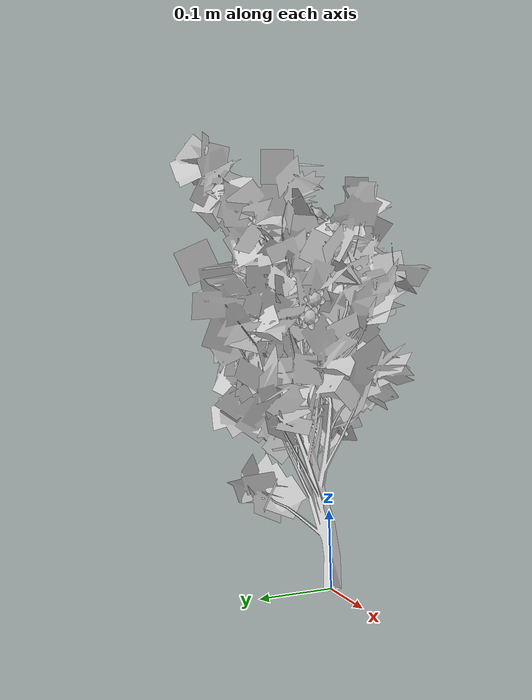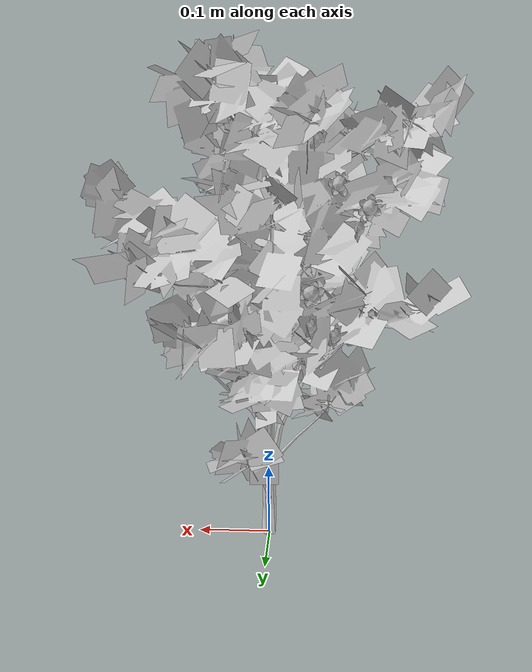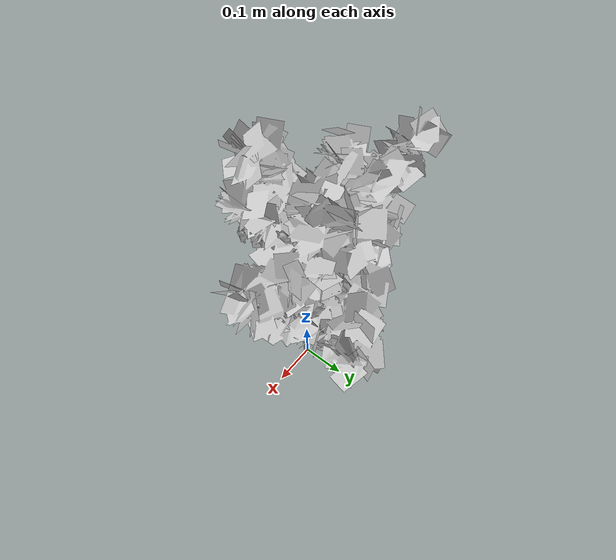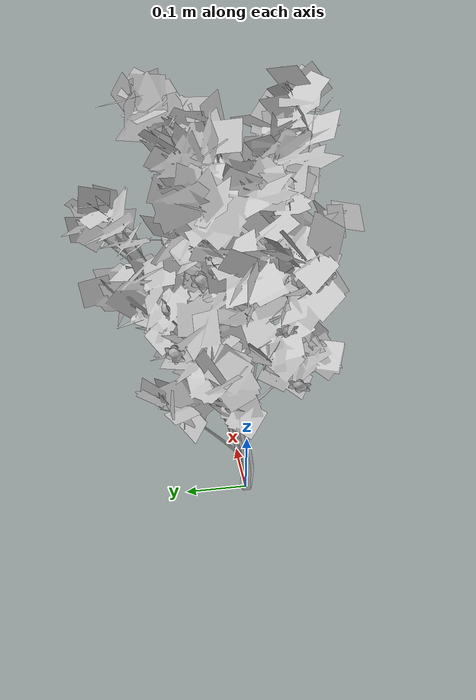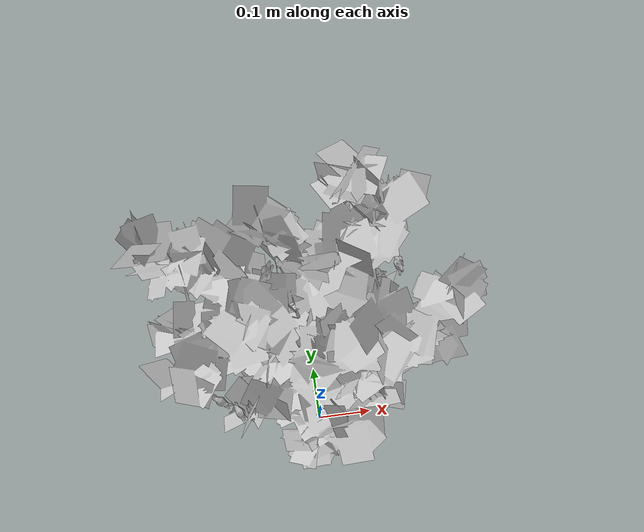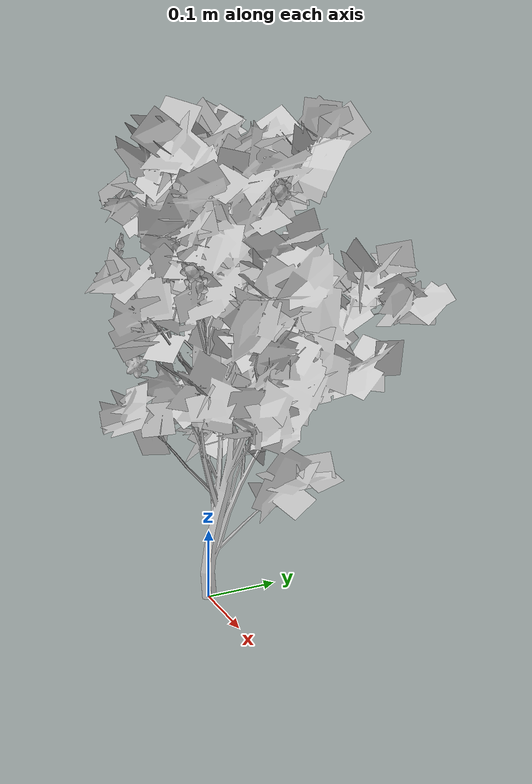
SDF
<?xml version="1.0" ?>
<sdf version="1.6">
  <model name="tree-flowers">
    <!--Skew-Seed:1963197035-->
    <static>true</static>
    <link name="link"/>
    <include>
      <uri>model://tree-mesh</uri>
      <pose>0 0 0 0 0 0</pose>
    </include>
    <joint name="tree_joint" type="fixed">
      <child>tree-mesh::link</child>
      <parent>link</parent>
    </joint>
    <include>
      <name>bramble_0</name>
      <uri>model://bramble</uri>
      <pose> 0.06174842399132445 -0.03955885405054295 0.4710653336929591 0.7150855419918406 1.458630421902501 0.0</pose>
    </include>
    <joint name="flower_joint_0" type="fixed">
      <child>bramble_0::flower_link</child>
      <parent>link</parent>
    </joint>
    <include>
      <name>bramble_1</name>
      <uri>model://bramble</uri>
      <pose> -0.09918900978291709 -0.034012983521369944 0.3669900261395716 -3.169871150083565 1.11026722219749 0.0</pose>
    </include>
    <joint name="flower_joint_1" type="fixed">
      <child>bramble_1::flower_link</child>
      <parent>link</parent>
    </joint>
    <include>
      <name>bramble_2</name>
      <uri>model://bramble</uri>
      <pose> -0.10708349888716195 -0.07226435488336656 0.4357252838066466 -3.1342242699197627 1.2847973407617954 0.0</pose>
    </include>
    <joint name="flower_joint_2" type="fixed">
      <child>bramble_2::flower_link</child>
      <parent>link</parent>
    </joint>
    <include>
      <name>bramble_3</name>
      <uri>model://bramble</uri>
      <pose> -0.05820618506835293 0.12595762812354766 0.3883743433908665 -1.8566583421303293 1.2026329924076968 0.0</pose>
    </include>
    <joint name="flower_joint_3" type="fixed">
      <child>bramble_3::flower_link</child>
      <parent>link</parent>
    </joint>
    <include>
      <name>bramble_4</name>
      <uri>model://bramble</uri>
      <pose> 0.054769436722122755 0.10139413280934086 0.30374924458439295 -1.6233611516423272 2.111818122065249 0.0</pose>
    </include>
    <joint name="flower_joint_4" type="fixed">
      <child>bramble_4::flower_link</child>
      <parent>link</parent>
    </joint>
    <include>
      <name>bramble_5</name>
      <uri>model://bramble</uri>
      <pose> -0.12124275379261282 -0.0784246601440124 0.46307469642445315 -3.6369403880682283 1.8985382135809572 0.0</pose>
    </include>
    <joint name="flower_joint_5" type="fixed">
      <child>bramble_5::flower_link</child>
      <parent>link</parent>
    </joint>
    <include>
      <name>bramble_6</name>
      <uri>model://bramble</uri>
      <pose> 0.0961751100102139 0.11157116712006952 0.4205460274839384 -1.3980395059714303 1.558830346332074 0.0</pose>
    </include>
    <joint name="flower_joint_6" type="fixed">
      <child>bramble_6::flower_link</child>
      <parent>link</parent>
    </joint>
    <include>
      <name>bramble_7</name>
      <uri>model://bramble</uri>
      <pose> -0.06238038432250888 0.0704226811945475 0.5696731458139401 -2.587943743569214 1.3123695485088367 0.0</pose>
    </include>
    <joint name="flower_joint_7" type="fixed">
      <child>bramble_7::flower_link</child>
      <parent>link</parent>
    </joint>
    <include>
      <name>bramble_8</name>
      <uri>model://bramble</uri>
      <pose> -0.14552813154657432 -0.06150759408108353 0.47701267523904883 -4.135797478616028 1.944363568640745 0.0</pose>
    </include>
    <joint name="flower_joint_8" type="fixed">
      <child>bramble_8::flower_link</child>
      <parent>link</parent>
    </joint>
    <include>
      <name>bramble_9</name>
      <uri>model://bramble</uri>
      <pose> -0.055725782446376965 0.10863219263710855 0.3404715855321498 -2.735921343434425 1.5796173720066808 0.0</pose>
    </include>
    <joint name="flower_joint_9" type="fixed">
      <child>bramble_9::flower_link</child>
      <parent>link</parent>
    </joint>
    <include>
      <name>bramble_10</name>
      <uri>model://bramble</uri>
      <pose> -0.12974793774507604 0.07206708685591798 0.4862479017241551 -1.9244962853703214 1.442733393830707 0.0</pose>
    </include>
    <joint name="flower_joint_10" type="fixed">
      <child>bramble_10::flower_link</child>
      <parent>link</parent>
    </joint>
    <include>
      <name>bramble_11</name>
      <uri>model://bramble</uri>
      <pose> -0.09095245361521812 0.06251250736331158 0.5134648476287005 -2.1038108654069285 1.9565318122779451 0.0</pose>
    </include>
    <joint name="flower_joint_11" type="fixed">
      <child>bramble_11::flower_link</child>
      <parent>link</parent>
    </joint>
    <include>
      <name>bramble_12</name>
      <uri>model://bramble</uri>
      <pose> -0.11399486421196144 0.08450005297038782 0.46088873212368 -2.8642464034876407 1.4322915116498933 0.0</pose>
    </include>
    <joint name="flower_joint_12" type="fixed">
      <child>bramble_12::flower_link</child>
      <parent>link</parent>
    </joint>
    <include>
      <name>bramble_13</name>
      <uri>model://bramble</uri>
      <pose> 0.09786036275606494 0.05548794442640394 0.588350531784757 -0.15101406846733956 1.6291534411613466 0.0</pose>
    </include>
    <joint name="flower_joint_13" type="fixed">
      <child>bramble_13::flower_link</child>
      <parent>link</parent>
    </joint>
    <include>
      <name>bramble_14</name>
      <uri>model://bramble</uri>
      <pose> 0.07404219918797435 -0.04588242754354041 0.3373923039302688 0.2787360884633564 2.0524856414835093 0.0</pose>
    </include>
    <joint name="flower_joint_14" type="fixed">
      <child>bramble_14::flower_link</child>
      <parent>link</parent>
    </joint>
    <include>
      <name>bramble_15</name>
      <uri>model://bramble</uri>
      <pose> 0.08946232205163204 -0.056105382889500496 0.4992609868177988 0.7423696653386025 2.116116625089594 0.0</pose>
    </include>
    <joint name="flower_joint_15" type="fixed">
      <child>bramble_15::flower_link</child>
      <parent>link</parent>
    </joint>
    <include>
      <name>bramble_16</name>
      <uri>model://bramble</uri>
      <pose> -0.08566399511897053 0.11961330382040382 0.3322455155919464 -2.6657998160001335 1.478283880000643 0.0</pose>
    </include>
    <joint name="flower_joint_16" type="fixed">
      <child>bramble_16::flower_link</child>
      <parent>link</parent>
    </joint>
    <include>
      <name>bramble_17</name>
      <uri>model://bramble</uri>
      <pose> -0.14133217148428753 -0.0468311729196028 0.3019144165717523 -2.8441674624316677 1.1833935096664459 0.0</pose>
    </include>
    <joint name="flower_joint_17" type="fixed">
      <child>bramble_17::flower_link</child>
      <parent>link</parent>
    </joint>
  </model>
</sdf>

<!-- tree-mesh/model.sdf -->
<sdf version="1.6">
  <model name="tree-mesh">
    <static>true</static>
    <link name="link">

      <collision name="collision">
        <geometry>
          <mesh>
            <uri>model://tree-mesh/meshes/new_tree.dae</uri>
            <scale>0.0625 0.0625 0.0625</scale>
          </mesh>
        </geometry>
      </collision>

      <!-- simplified collision for sake of speed since leaves shouldn't be blocking anyway -->

      <visual name="leaves">
        <geometry>
          <mesh>
            <uri>model://tree-mesh/meshes/leaves.dae</uri>
            <scale>0.0325 0.0325 0.0325</scale>
          </mesh>
        </geometry>
        <material>
          <script>
            <uri>model://tree-mesh/materials/scripts/</uri>
            <uri>model://tree-mesh/materials/textures/</uri>
            <name>NewTree/Branch</name>
          </script>
        </material>
      </visual>
      <visual name="bark">
        <geometry>
          <mesh>
            <uri>model://tree-mesh/meshes/bark.dae</uri>
            <scale>0.0325 0.0325 0.0325</scale>
          </mesh>
        </geometry>
        <material>
          <script>
            <uri>model://tree-mesh/materials/scripts/</uri>
            <uri>model://tree-mesh/materials/textures/</uri>
            <name>NewTree/Bark</name>
          </script>
        </material>
      </visual>
    </link>
  </model>
</sdf>

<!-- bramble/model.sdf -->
<sdf version="1.6">
  <model name="bramble">
    <static>true</static>
    <link name="flower_link">
      <collision name="body_collision">
        <geometry>
          <mesh>
            <uri>model://bramble/meshes/bramble.dae</uri>
            <scale>0.2 0.2 0.2</scale>
          </mesh>
        </geometry>
      </collision>
      <visual name="petals">
        <geometry>
          <mesh>
            <uri>model://bramble/meshes/bramble.dae</uri>
            <scale>0.2 0.2 0.2</scale>
            <submesh>
              <name>petal</name>
            </submesh>
          </mesh>
        </geometry>
        <material>
          <script>
            <uri>model://bramble/materials/scripts/</uri>
            <uri>model://bramble/materials/textures/</uri>
            <name>Bramble/Petal</name>
          </script>
        </material>
      </visual>
      <visual name="carpel">
        <geometry>
          <mesh>
            <uri>model://bramble/meshes/bramble.dae</uri>
            <scale>0.2 0.2 0.2</scale>
            <submesh>
              <name>carpel</name>
            </submesh>
          </mesh>
        </geometry>
        <material>
          <script>
            <uri>model://bramble/materials/scripts/</uri>
            <uri>model://bramble/materials/textures/</uri>
            <name>Bramble/Carpel</name>
          </script>
        </material>
      </visual>
      <visual name="stamen">
        <geometry>
          <mesh>
            <uri>model://bramble/meshes/bramble.dae</uri>
            <scale>0.2 0.2 0.2</scale>
            <submesh>
              <name>stamen</name>
            </submesh>
          </mesh>
        </geometry>
        <material>
          <script>
            <uri>model://bramble/materials/scripts/</uri>
            <uri>model://bramble/materials/textures/</uri>
            <name>Bramble/Stamen</name>
          </script>
        </material>
      </visual>
    </link>
  </model>
</sdf>
